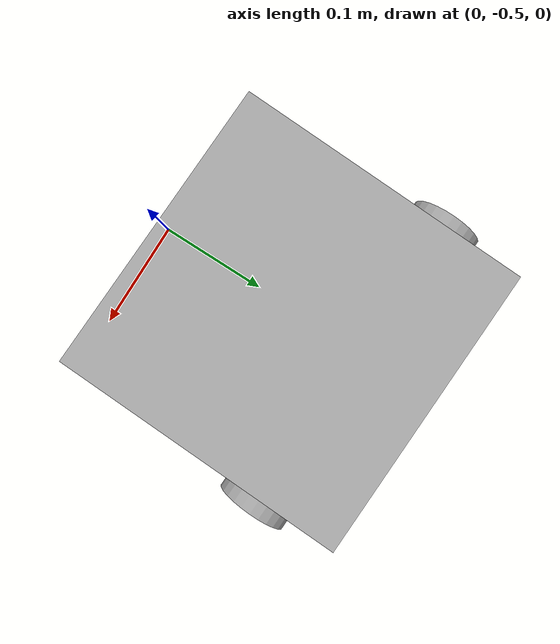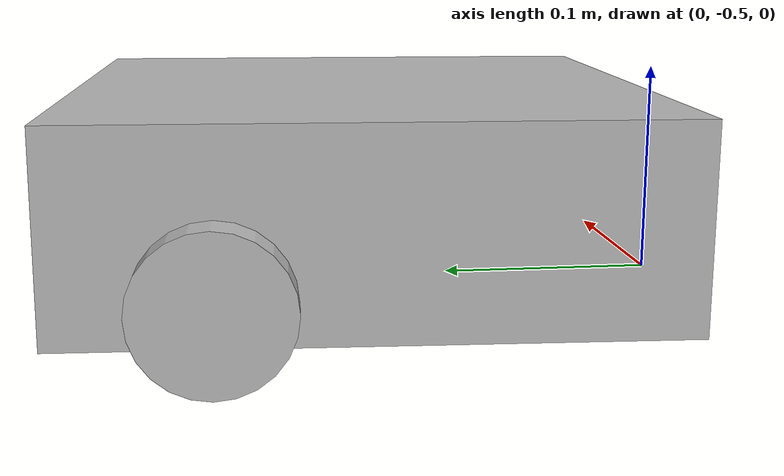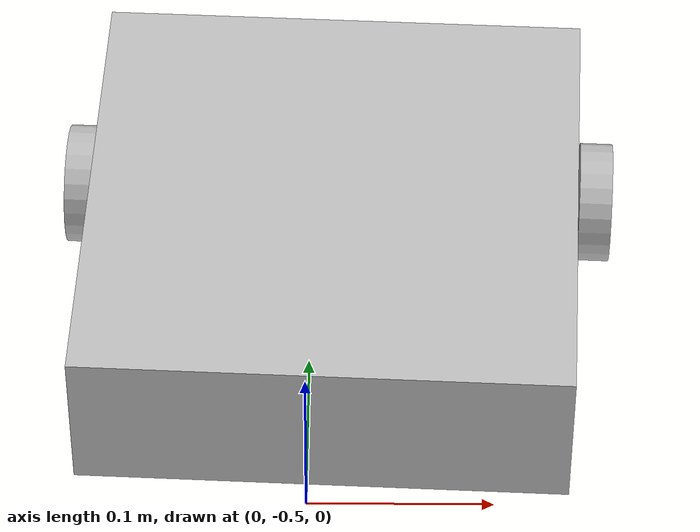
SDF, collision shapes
<?xml version="1.0" ?>
<sdf version="1.9">
  <model name="custom_turtlebot">
    <pose>0.0156 -0.2937 0.0 0.0 0.0 1.53</pose>

    <link name="base_footprint"/>

    <link name="base_link">
      <inertial>
        <pose>-0.064 0 0.048 0 0 0</pose>
        <inertia>
          <ixx>0.001</ixx>
          <ixy>0.000</ixy>
          <ixz>0.000</ixz>
          <iyy>0.001</iyy>
          <iyz>0.000</iyz>
          <izz>0.001</izz>
        </inertia>
        <mass>1.0</mass>
      </inertial>

      <collision name="base_collision">
        <pose>-0.064 0 0.048 0 0 0</pose>
        <geometry>
          <box>
            <size>0.265 0.265 0.089</size>
          </box>
        </geometry>
      </collision>

      <visual name="base_visual">
        <pose>-0.064 0 0 0 0 0</pose>
        <geometry>
          <mesh>
            <uri>meshes/waffle_pi_base.dae</uri>
            <scale>0.001 0.001 0.001</scale>
          </mesh>
        </geometry>
      </visual>
    </link>

    <!-- ====== IMU Link ====== -->
    <link name="imu_link">
      <sensor name="tb3_imu" type="imu">
        <always_on>true</always_on>
        <update_rate>200</update_rate>
        <topic>imu</topic>
        <gz_frame_id>imu_link</gz_frame_id>
        <imu>
          <angular_velocity>
            <x><noise type="gaussian"><mean>0.0</mean><stddev>2e-4</stddev></noise></x>
            <y><noise type="gaussian"><mean>0.0</mean><stddev>2e-4</stddev></noise></y>
            <z><noise type="gaussian"><mean>0.0</mean><stddev>2e-4</stddev></noise></z>
          </angular_velocity>
          <linear_acceleration>
            <x><noise type="gaussian"><mean>0.0</mean><stddev>1.7e-2</stddev></noise></x>
            <y><noise type="gaussian"><mean>0.0</mean><stddev>1.7e-2</stddev></noise></y>
            <z><noise type="gaussian"><mean>0.0</mean><stddev>1.7e-2</stddev></noise></z>
          </linear_acceleration>
        </imu>
      </sensor>
    </link>

    <!-- ====== Wheels ====== -->

    <link name="wheel_left_link">
      <inertial>
        <pose>0.0 0.144 0.023 -1.57 0 0</pose>
        <inertia>
          <ixx>0.001</ixx><ixy>0.000</ixy><ixz>0.000</ixz>
          <iyy>0.001</iyy><iyz>0.000</iyz><izz>0.001</izz>
        </inertia>
        <mass>0.1</mass>
      </inertial>

      <collision name="wheel_left_collision">
        <pose>0.0 0.144 0.023 -1.57 0 0</pose>
        <geometry>
          <cylinder>
            <radius>0.033</radius>
            <length>0.018</length>
          </cylinder>
        </geometry>
        <surface>
          <friction>
            <ode>
              <mu>1.0</mu>
              <mu2>1.0</mu2>
              <fdir1>0 0 0</fdir1>
              <slip1>0.0</slip1>
              <slip2>0.0</slip2>
            </ode>
          </friction>
          <contact>
            <ode>
              <soft_cfm>0</soft_cfm>
              <soft_erp>0.2</soft_erp>
              <kp>1e+6</kp>
              <kd>1</kd>
              <max_vel>0.01</max_vel>
              <min_depth>0.001</min_depth>
            </ode>
          </contact>
        </surface>
      </collision>

      <visual name="wheel_left_visual">
        <pose>0.0 0.144 0.023 0 0 0</pose>
        <geometry>
          <mesh>
            <uri>meshes/tire.dae</uri>
            <scale>0.001 0.001 0.001</scale>
          </mesh>
        </geometry>
      </visual>
    </link>

    <link name="wheel_right_link">
      <inertial>
        <pose>0.0 -0.144 0.023 -1.57 0 0</pose>
        <inertia>
          <ixx>0.001</ixx><ixy>0.000</ixy><ixz>0.000</ixz>
          <iyy>0.001</iyy><iyz>0.000</iyz><izz>0.001</izz>
        </inertia>
        <mass>0.1</mass>
      </inertial>

      <collision name="wheel_right_collision">
        <pose>0.0 -0.144 0.023 -1.57 0 0</pose>
        <geometry>
          <cylinder>
            <radius>0.033</radius>
            <length>0.018</length>
          </cylinder>
        </geometry>
        <surface>
          <friction>
            <ode>
              <mu>1.0</mu>
              <mu2>1.0</mu2>
              <fdir1>0 0 0</fdir1>
              <slip1>0.0</slip1>
              <slip2>0.0</slip2>
            </ode>
          </friction>
          <contact>
            <ode>
              <soft_cfm>0</soft_cfm>
              <soft_erp>0.2</soft_erp>
              <kp>1e+6</kp>
              <kd>1</kd>
              <max_vel>0.01</max_vel>
              <min_depth>0.001</min_depth>
            </ode>
          </contact>
        </surface>
      </collision>

      <visual name="wheel_right_visual">
        <pose>0.0 -0.144 0.023 0 0 0</pose>
        <geometry>
          <mesh>
            <uri>meshes/tire.dae</uri>
            <scale>0.001 0.001 0.001</scale>
          </mesh>
        </geometry>
      </visual>
    </link>

    <!-- ====== Casters ====== -->
    <link name="caster_back_right_link">
      <pose>-0.177 -0.064 -0.004 0 0 0</pose>
      <inertial>
        <mass>0.001</mass>
        <inertia>
          <ixx>0.00001</ixx><ixy>0.000</ixy><ixz>0.000</ixz>
          <iyy>0.00001</iyy><iyz>0.000</iyz><izz>0.00001</izz>
        </inertia>
      </inertial>
      <collision name="collision">
        <geometry>
          <sphere><radius>0.005</radius></sphere>
        </geometry>
        <surface>
          <contact>
            <ode>
              <soft_cfm>0</soft_cfm>
              <soft_erp>0.2</soft_erp>
              <kp>1e+5</kp>
              <kd>1</kd>
              <max_vel>0.01</max_vel>
              <min_depth>0.001</min_depth>
            </ode>
          </contact>
        </surface>
      </collision>
    </link>

    <link name="caster_back_left_link">
      <pose>-0.177 0.064 -0.004 0 0 0</pose>
      <inertial>
        <mass>0.001</mass>
        <inertia>
          <ixx>0.00001</ixx><ixy>0.000</ixy><ixz>0.000</ixz>
          <iyy>0.00001</iyy><iyz>0.000</iyz><izz>0.00001</izz>
        </inertia>
      </inertial>
      <collision name="collision">
        <geometry>
          <sphere><radius>0.005</radius></sphere>
        </geometry>
        <surface>
          <contact>
            <ode>
              <soft_cfm>0</soft_cfm>
              <soft_erp>0.2</soft_erp>
              <kp>1e+5</kp>
              <kd>1</kd>
              <max_vel>0.01</max_vel>
              <min_depth>0.001</min_depth>
            </ode>
          </contact>
        </surface>
      </collision>
    </link>

    <!-- ====== Camera ====== -->

    <link name="camera_link"/>

    <link name="camera_rgb_optical_frame">
      <inertial>
        <pose>0.076 0.0 0.093 0 0 0</pose>
        <inertia>
          <ixx>0.001</ixx><ixy>0.000</ixy><ixz>0.000</ixz>
          <iyy>0.001</iyy><iyz>0.000</iyz><izz>0.001</izz>
        </inertia>
        <mass>0.035</mass>
      </inertial>

      <pose>0.035 0 0.14 0 0.6 0</pose> <!-- THE PARAMETERS THAT MATTER -->
      <sensor name="camera" type="camera">
        <always_on>true</always_on>
        <visualize>true</visualize>
        <update_rate>30</update_rate>
        <topic>camera/image_raw</topic>
        <gz_frame_id>camera_rgb_optical_frame</gz_frame_id>
        <camera name="picam">
          <horizontal_fov>1.35</horizontal_fov>
          <image>
            <width>640</width>
            <height>480</height>
            <format>R8G8B8</format>
          </image>
          <clip>
            <near>0.03</near>
            <far>100</far>
          </clip>
          <noise>
            <type>gaussian</type>
            <mean>0.0</mean>
            <stddev>0.005</stddev>
          </noise>
        </camera>
      </sensor>
    </link>

    <!-- ====== Joints ====== -->
    <joint name="base_joint" type="fixed">
      <parent>base_footprint</parent>
      <child>base_link</child>
      <pose>0.0 0.0 0.010 0 0 0</pose>
    </joint>

    <joint name="wheel_left_joint" type="revolute">
      <parent>base_link</parent>
      <child>wheel_left_link</child>
      <pose>0.0 0.144 0.023 -1.57 0 0</pose>
      <axis>
        <xyz>0 0 1</xyz>
      </axis>
    </joint>

    <joint name="wheel_right_joint" type="revolute">
      <parent>base_link</parent>
      <child>wheel_right_link</child>
      <pose>0.0 -0.144 0.023 -1.57 0 0</pose>
      <axis>
        <xyz>0 0 1</xyz>
      </axis>
    </joint>

    <joint name="caster_back_right_joint" type="ball">
      <parent>base_link</parent>
      <child>caster_back_right_link</child>
    </joint>

    <joint name="caster_back_left_joint" type="ball">
      <parent>base_link</parent>
      <child>caster_back_left_link</child>
    </joint>

    <joint name="camera_joint" type="fixed">
      <parent>base_link</parent>
      <child>camera_link</child>
      <pose>0.073 -0.011 0.084 0 5.6 0</pose>
      <axis>
        <xyz>0 0 1</xyz>
      </axis>
    </joint>

    <joint name="camera_rgb_joint" type="fixed">
      <parent>camera_link</parent>
      <child>camera_rgb_optical_frame</child>
      <pose>0.003 0.011 0.009 0 5.6 0</pose>
      <axis>
        <xyz>0 0 1</xyz>
      </axis>
    </joint>

    <!-- ====== Gz Harmonic DiffDrive Plugin ====== -->

    <plugin filename="gz-sim-diff-drive-system"
            name="gz::sim::systems::DiffDrive">
      <left_joint>wheel_left_joint</left_joint>
      <right_joint>wheel_right_joint</right_joint>
      <wheel_separation>0.288</wheel_separation>
      <wheel_radius>0.033</wheel_radius>
      <max_linear_acceleration>2.5</max_linear_acceleration>
      <topic>cmd_vel</topic>
      <odom_topic>odom</odom_topic>
      <frame_id>odom</frame_id>
      <child_frame_id>base_footprint</child_frame_id>
      <odom_publish_frequency>50</odom_publish_frequency>
    </plugin>

    <!-- ====== Gz Harmonic Joint State Publisher ====== -->
    <plugin filename="gz-sim-joint-state-publisher-system"
            name="gz::sim::systems::JointStatePublisher">
      <joint_name>wheel_left_joint</joint_name>
      <joint_name>wheel_right_joint</joint_name>
      <topic>joint_states</topic>
      <update_rate>30</update_rate>
    </plugin>

  </model>
</sdf>
